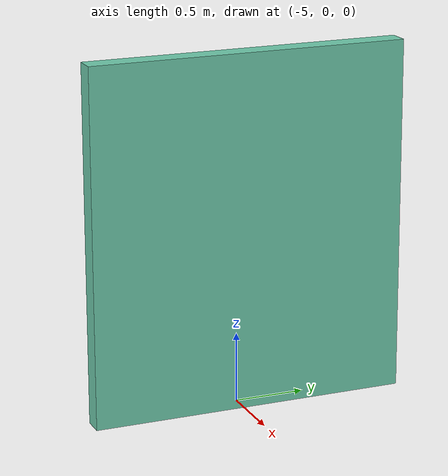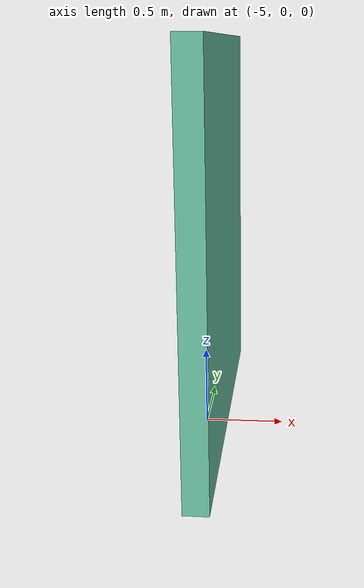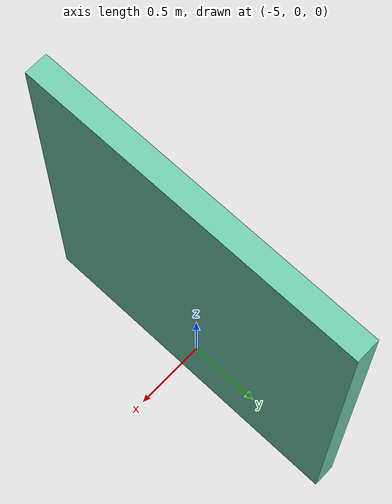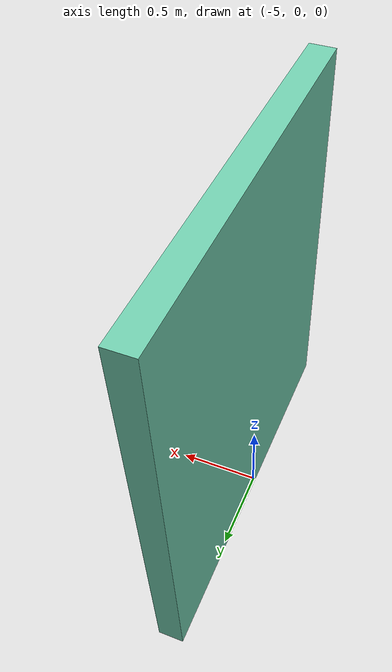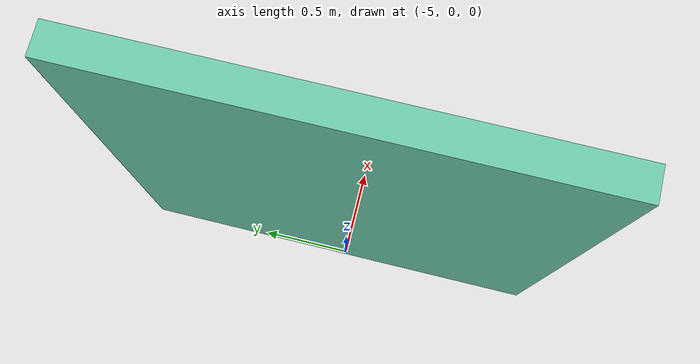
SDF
<sdf version="1.6">
 <world name="default">
  <model name="map_3">
   <pose>0.639107 -0.355311 0 0 -0 0</pose>
   <link name="Wall_43">
    <collision name="Wall_43_Collision">
     <geometry><box><size>2.25 0.15 2.5</size></box></geometry>
     <pose>0 0 1.25 0 -0 0</pose>
    </collision>
    <visual name="Wall_43_Visual">
     <pose>0 0 1.25 0 -0 0</pose>
     <geometry><box><size>2.25 0.15 2.5</size></box></geometry>
     <material>
      <script><uri>file://media/materials/scripts/gazebo.material</uri><name>Gazebo/Grey</name></script>
      <ambient>0.435294 0.796078 0.67451 1</ambient>
     </material>
     <meta><layer>0</layer></meta>
    </visual>
    <pose>-5.57626 0.405686 0 0 -0 -1.5708</pose>
   </link>
   <static>1</static>
  </model>
 </world>
</sdf>
